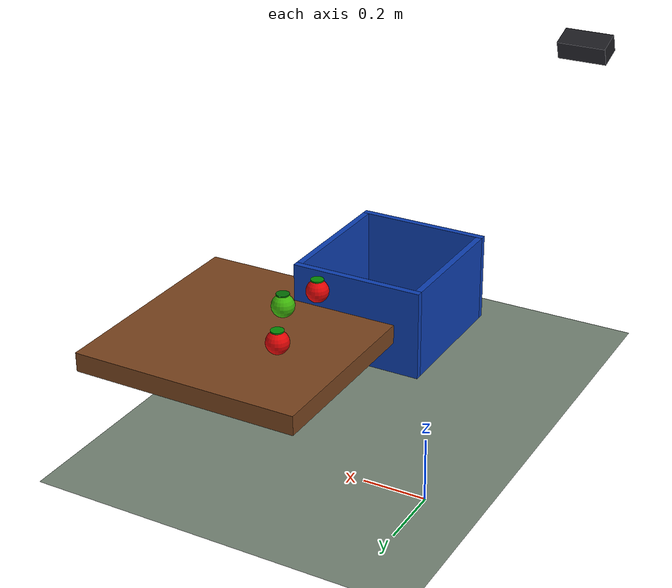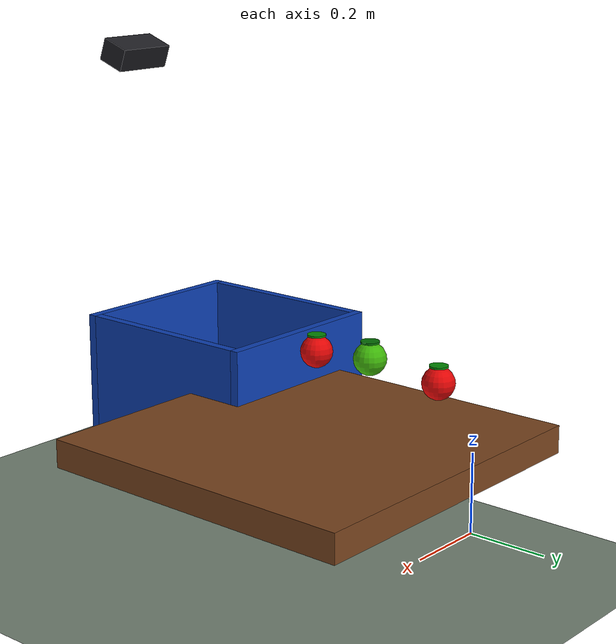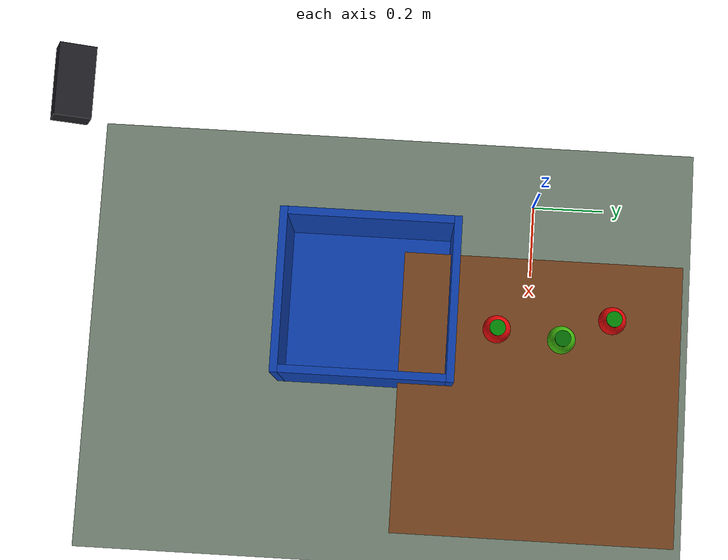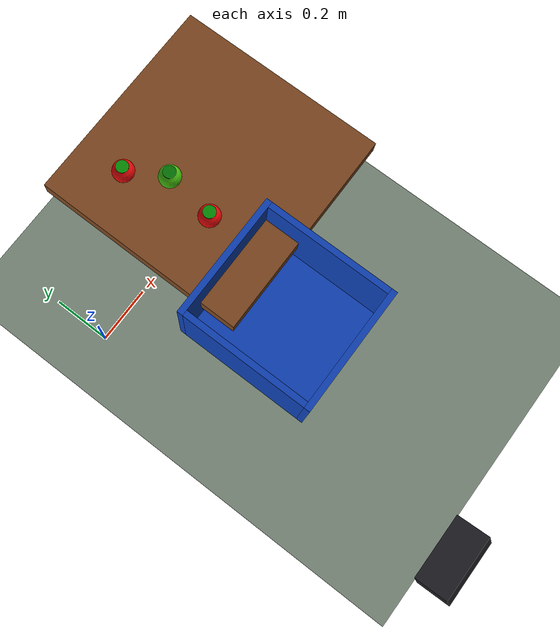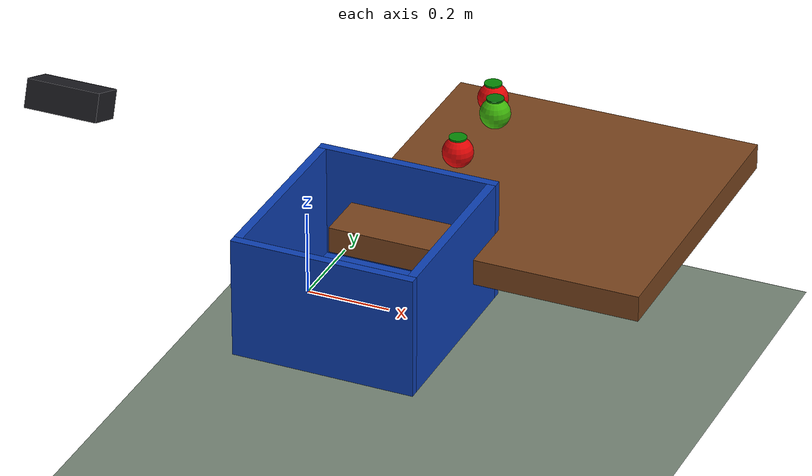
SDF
<?xml version="1.0"?>
<sdf version="1.10">
  <world name="strawberry_orchard">
    <physics name="1ms" type="dart">
      <max_step_size>0.001</max_step_size>
      <real_time_factor>1.0</real_time_factor>
    </physics>

    <plugin filename="gz-sim-physics-system"
            name="gz::sim::systems::Physics"/>
    <plugin filename="gz-sim-user-commands-system"
            name="gz::sim::systems::UserCommands"/>
    <plugin filename="gz-sim-scene-broadcaster-system"
            name="gz::sim::systems::SceneBroadcaster"/>
    <plugin filename="gz-sim-sensors-system"
            name="gz::sim::systems::Sensors">
      <render_engine>ogre2</render_engine>
    </plugin>
    <plugin filename="gz-sim-contact-system"
            name="gz::sim::systems::Contact"/>

    <scene>
      <ambient>0.45 0.45 0.45 1</ambient>
      <background>0.72 0.80 0.88 1</background>
      <shadows>true</shadows>
    </scene>

    <light type="directional" name="sun">
      <cast_shadows>true</cast_shadows>
      <pose>0 0 6 0 0 0</pose>
      <diffuse>0.90 0.90 0.90 1</diffuse>
      <specular>0.25 0.25 0.25 1</specular>
      <attenuation>
        <range>100</range>
        <constant>0.9</constant>
        <linear>0.01</linear>
        <quadratic>0.001</quadratic>
      </attenuation>
      <direction>-0.4 0.2 -0.9</direction>
    </light>

    <model name="ground_plane">
      <static>true</static>
      <link name="ground_link">
        <collision name="ground_collision">
          <geometry><plane><normal>0 0 1</normal><size>8 8</size></plane></geometry>
        </collision>
        <visual name="ground_visual">
          <geometry><plane><normal>0 0 1</normal><size>8 8</size></plane></geometry>
          <material><ambient>0.30 0.34 0.30 1</ambient><diffuse>0.46 0.52 0.46 1</diffuse></material>
        </visual>
      </link>
    </model>

    <!-- Work surface only; Panda is deliberately supplied by the later
         manipulation integration package and is not faked here. -->
    <model name="work_table">
      <static>true</static>
      <link name="table_link">
        <collision name="table_collision">
          <pose>0.58 0 0.38 0 0 0</pose>
          <geometry><box><size>0.72 0.72 0.06</size></box></geometry>
        </collision>
        <visual name="table_visual">
          <pose>0.58 0 0.38 0 0 0</pose>
          <geometry><box><size>0.72 0.72 0.06</size></box></geometry>
          <material><ambient>0.24 0.13 0.06 1</ambient><diffuse>0.48 0.27 0.12 1</diffuse></material>
        </visual>
      </link>
    </model>

    <include>
      <uri>model://rgbd_camera</uri>
      <name>strawberry_rgbd_camera</name>
      <pose>0 -1.10 1.05 0 0.35 1.5707963268</pose>
    </include>

    <include>
      <uri>model://collection_bin</uri>
      <name>collection_bin</name>
      <pose>0 0 0 0 0 0</pose>
    </include>

    <include>
      <uri>model://strawberry_ripe_tabletop_v1</uri>
      <name>strawberry_1</name>
      <pose>0.42 -0.12 0.52 0 0 0</pose>
    </include>
    <include>
      <uri>model://strawberry_unripe_tabletop_v1</uri>
      <name>strawberry_2</name>
      <pose>0.44 0.04 0.54 0 0 0</pose>
    </include>
    <include>
      <uri>model://strawberry_ripe_tabletop_v1</uri>
      <name>strawberry_3</name>
      <pose>0.38 0.17 0.50 0 0 0</pose>
    </include>
  </world>
</sdf>

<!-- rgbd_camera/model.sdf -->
<sdf version="1.10">
  <model name="strawberry_rgbd_camera">
    <static>true</static>
    <link name="strawberry_camera_link">
      <visual name="housing_visual">
        <geometry><box><size>0.08 0.16 0.06</size></box></geometry>
        <material><ambient>0.06 0.06 0.07 1</ambient><diffuse>0.12 0.12 0.14 1</diffuse></material>
      </visual>
      <sensor name="rgbd" type="rgbd_camera">
        <camera>
          <horizontal_fov>1.0471975512</horizontal_fov>
          <image>
            <width>640</width>
            <height>480</height>
            <format>R8G8B8</format>
          </image>
          <clip>
            <near>0.10</near>
            <far>5.0</far>
          </clip>
          <optical_frame_id>strawberry_camera_optical_frame</optical_frame_id>
        </camera>
        <always_on>true</always_on>
        <update_rate>30</update_rate>
        <visualize>true</visualize>
        <topic>/camera</topic>
        <gz_frame_id>strawberry_camera_optical_frame</gz_frame_id>
      </sensor>
    </link>
  </model>
</sdf>

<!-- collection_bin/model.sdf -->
<sdf version="1.10">
  <model name="collection_bin">
    <static>true</static>
    <link name="bin_link">
      <collision name="floor_collision">
        <pose>0.35 -0.45 0.26 0 0 0</pose>
        <geometry><box><size>0.38 0.42 0.02</size></box></geometry>
      </collision>
      <visual name="floor_visual">
        <pose>0.35 -0.45 0.26 0 0 0</pose>
        <geometry><box><size>0.38 0.42 0.02</size></box></geometry>
        <material><ambient>0.03 0.12 0.35 1</ambient><diffuse>0.05 0.25 0.70 1</diffuse></material>
      </visual>

      <collision name="left_wall_collision">
        <pose>0.15 -0.45 0.39 0 0 0</pose>
        <geometry><box><size>0.02 0.42 0.28</size></box></geometry>
      </collision>
      <visual name="left_wall_visual">
        <pose>0.15 -0.45 0.39 0 0 0</pose>
        <geometry><box><size>0.02 0.42 0.28</size></box></geometry>
        <material><ambient>0.03 0.12 0.35 1</ambient><diffuse>0.05 0.25 0.70 1</diffuse></material>
      </visual>

      <collision name="right_wall_collision">
        <pose>0.55 -0.45 0.39 0 0 0</pose>
        <geometry><box><size>0.02 0.42 0.28</size></box></geometry>
      </collision>
      <visual name="right_wall_visual">
        <pose>0.55 -0.45 0.39 0 0 0</pose>
        <geometry><box><size>0.02 0.42 0.28</size></box></geometry>
        <material><ambient>0.03 0.12 0.35 1</ambient><diffuse>0.05 0.25 0.70 1</diffuse></material>
      </visual>

      <collision name="front_wall_collision">
        <pose>0.35 -0.67 0.39 0 0 0</pose>
        <geometry><box><size>0.42 0.02 0.28</size></box></geometry>
      </collision>
      <visual name="front_wall_visual">
        <pose>0.35 -0.67 0.39 0 0 0</pose>
        <geometry><box><size>0.42 0.02 0.28</size></box></geometry>
        <material><ambient>0.03 0.12 0.35 1</ambient><diffuse>0.05 0.25 0.70 1</diffuse></material>
      </visual>

      <collision name="back_wall_collision">
        <pose>0.35 -0.23 0.39 0 0 0</pose>
        <geometry><box><size>0.42 0.02 0.28</size></box></geometry>
      </collision>
      <visual name="back_wall_visual">
        <pose>0.35 -0.23 0.39 0 0 0</pose>
        <geometry><box><size>0.42 0.02 0.28</size></box></geometry>
        <material><ambient>0.03 0.12 0.35 1</ambient><diffuse>0.05 0.25 0.70 1</diffuse></material>
      </visual>
    </link>
  </model>
</sdf>

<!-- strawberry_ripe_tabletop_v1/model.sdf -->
<sdf version="1.10">
  <model name="strawberry_ripe_tabletop_v1">
    <static>false</static>
    <self_collide>false</self_collide>
    <link name="fruit_link">
      <gravity>false</gravity>
      <velocity_decay><linear>0.5</linear><angular>0.5</angular></velocity_decay>
      <inertial>
        <mass>0.030</mass>
        <inertia><ixx>0.0000147</ixx><iyy>0.0000147</iyy><izz>0.0000147</izz></inertia>
      </inertial>
      <collision name="fruit_collision">
        <geometry><sphere><radius>0.035</radius></sphere></geometry>
        <surface><friction><ode><mu>1.0</mu><mu2>1.0</mu2></ode></friction></surface>
      </collision>
      <visual name="fruit_visual">
        <geometry><sphere><radius>0.035</radius></sphere></geometry>
        <material>
          <ambient>0.55 0.015 0.015 1</ambient>
          <diffuse>0.90 0.025 0.025 1</diffuse>
          <specular>0.10 0.10 0.10 1</specular>
        </material>
      </visual>
      <visual name="calyx_visual">
        <pose>0 0 0.036 0 0 0</pose>
        <geometry><cylinder><radius>0.020</radius><length>0.004</length></cylinder></geometry>
        <material><ambient>0.01 0.25 0.01 1</ambient><diffuse>0.02 0.55 0.02 1</diffuse></material>
      </visual>
      <sensor name="fruit_contact_sensor" type="contact">
        <always_on>true</always_on><update_rate>100</update_rate>
        <contact><collision>fruit_collision</collision><topic>/strawberry/sim/fruit_contacts</topic></contact>
      </sensor>
    </link>
    <plugin filename="gz-sim-pose-publisher-system" name="gz::sim::systems::PosePublisher">
      <publish_link_pose>false</publish_link_pose>
      <publish_visual_pose>false</publish_visual_pose>
      <publish_collision_pose>false</publish_collision_pose>
      <publish_sensor_pose>false</publish_sensor_pose>
      <publish_model_pose>true</publish_model_pose>
      <use_pose_vector_msg>true</use_pose_vector_msg>
      <update_frequency>60</update_frequency>
    </plugin>
  </model>
</sdf>

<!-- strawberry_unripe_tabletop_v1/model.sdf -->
<sdf version="1.10">
  <model name="strawberry_unripe_tabletop_v1">
    <static>false</static>
    <self_collide>false</self_collide>
    <link name="fruit_link">
      <gravity>false</gravity>
      <velocity_decay><linear>0.5</linear><angular>0.5</angular></velocity_decay>
      <inertial>
        <mass>0.030</mass>
        <inertia><ixx>0.0000147</ixx><iyy>0.0000147</iyy><izz>0.0000147</izz></inertia>
      </inertial>
      <collision name="fruit_collision">
        <geometry><sphere><radius>0.035</radius></sphere></geometry>
        <surface><friction><ode><mu>1.0</mu><mu2>1.0</mu2></ode></friction></surface>
      </collision>
      <visual name="fruit_visual">
        <geometry><sphere><radius>0.035</radius></sphere></geometry>
        <material>
          <ambient>0.12 0.38 0.02 1</ambient>
          <diffuse>0.25 0.72 0.04 1</diffuse>
          <specular>0.08 0.08 0.08 1</specular>
        </material>
      </visual>
      <visual name="calyx_visual">
        <pose>0 0 0.036 0 0 0</pose>
        <geometry><cylinder><radius>0.020</radius><length>0.004</length></cylinder></geometry>
        <material><ambient>0.01 0.20 0.01 1</ambient><diffuse>0.02 0.45 0.02 1</diffuse></material>
      </visual>
      <sensor name="fruit_contact_sensor" type="contact">
        <always_on>true</always_on><update_rate>100</update_rate>
        <contact><collision>fruit_collision</collision><topic>/strawberry/sim/fruit_contacts</topic></contact>
      </sensor>
    </link>
    <plugin filename="gz-sim-pose-publisher-system" name="gz::sim::systems::PosePublisher">
      <publish_link_pose>false</publish_link_pose>
      <publish_visual_pose>false</publish_visual_pose>
      <publish_collision_pose>false</publish_collision_pose>
      <publish_sensor_pose>false</publish_sensor_pose>
      <publish_model_pose>true</publish_model_pose>
      <use_pose_vector_msg>true</use_pose_vector_msg>
      <update_frequency>60</update_frequency>
    </plugin>
  </model>
</sdf>
